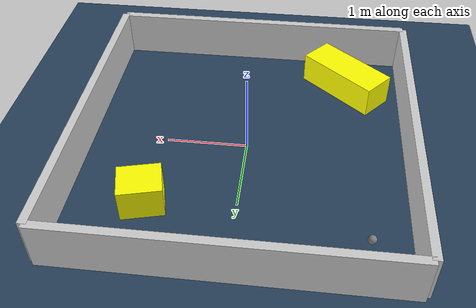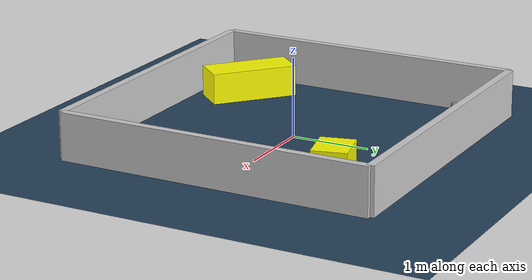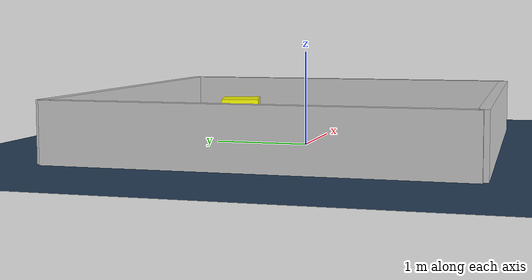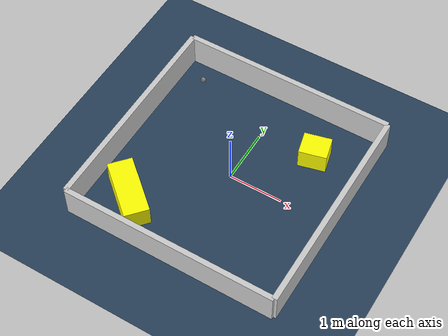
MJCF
<?xml version="1.0" ?>
<mujoco model="generated_environment">
  <option timestep="0.01" integrator="RK4" cone="elliptic"/>
  <default>
    <geom density="1"/>
  </default>
  <asset>
    <texture builtin="gradient" height="3072" rgb1="0.3 0.5 0.7" rgb2="0 0 0" type="skybox" width="512"/>
    <texture builtin="checker" height="300" mark="edge" markrgb="0.8 0.8 0.8" name="groundplane" rgb1="0.2 0.3 0.4" rgb2="0.1 0.2 0.3" type="2d" width="300"/>
    <material name="groundplane" reflectance="0.2" texrepeat="5 5" texture="groundplane" texuniform="true"/>
    <material name="robot" rgba="0.0 1.0 0.0 1"/>
  </asset>
  <worldbody>
    <light dir="0 0 -1" directional="true" pos="0 0 1.5"/>
    <geom condim="4" friction="1.0 0.005 0.001" material="groundplane" name="floor" size="0 0 0.05" type="plane"/>
    <body name="walls">
      <geom name="wall_1" condim="4" pos="-2.0 0.0 0.3" rgba="0.800000011920929 0.800000011920929 0.800000011920929 1.0" size="0.05 2.0 0.3" type="box"/>
      <geom name="wall_2" condim="4" pos="2.0 0.0 0.3" rgba="0.800000011920929 0.800000011920929 0.800000011920929 1.0" size="0.05 2.0 0.3" type="box"/>
      <geom name="wall_3" condim="4" pos="0.0 -2.0 0.3" rgba="0.800000011920929 0.800000011920929 0.800000011920929 1.0" size="2.0 0.05 0.3" type="box"/>
      <geom name="wall_4" condim="4" pos="0.0 2.0 0.3" rgba="0.800000011920929 0.800000011920929 0.800000011920929 1.0" size="2.0 0.05 0.3" type="box"/>
    </body>
    <body name="robot">
      <joint name="joint_x" type="slide" pos="0 0 0" axis="1 0 0"/>
      <joint name="joint_y" type="slide" pos="0 0 0" axis="0 1 0"/>
      <geom name="robot" type="sphere" pos="-1.479025999953439 1.4899354852602804 0.2" size="0.05" mass="5." friction="1.0 0.005 0.0001" condim="4"/>
      <site name="sensor_ball"/>
    </body>
    <body name="obstacle_1_movable">
      <geom name="obstacle_1_movable" condim="4" pos="-1.232137883647023 -1.3088130297388145 0.2" euler="0 0 229.01078753317736" friction="1.0 0.005 0.001" rgba="1 1 0 1" size="0.22694173993173963 0.5623501503959989 0.2" type="box" mass="0.1"/>
      <joint type="free"/>
    </body>
    <body name="obstacle_2_movable">
      <geom name="obstacle_2_movable" condim="4" pos="1.0737269881099478 1.0887855956696362 0.2" euler="0 0 103.97413003424779" friction="1.0 0.005 0.001" rgba="1 1 0 1" size="0.21721600804911134 0.2529769002347774 0.2" type="box" mass="0.1"/>
      <joint type="free"/>
    </body>
  </worldbody>
  <actuator>
    <motor name="actuator_x" joint="joint_x" gear="1" ctrlrange="-1 1"/>
    <motor name="actuator_y" joint="joint_y" gear="1" ctrlrange="-1 1"/>
  </actuator>
</mujoco>
